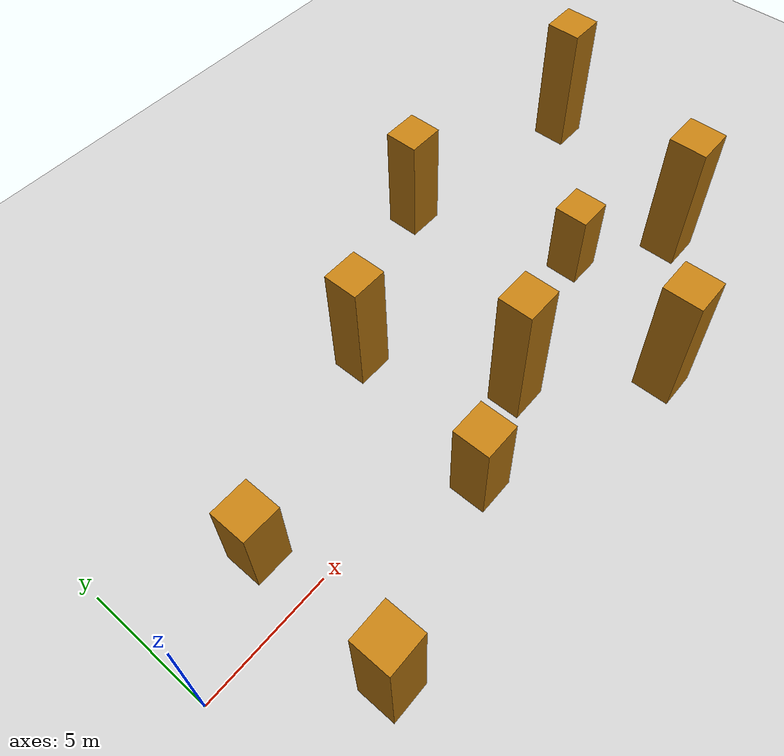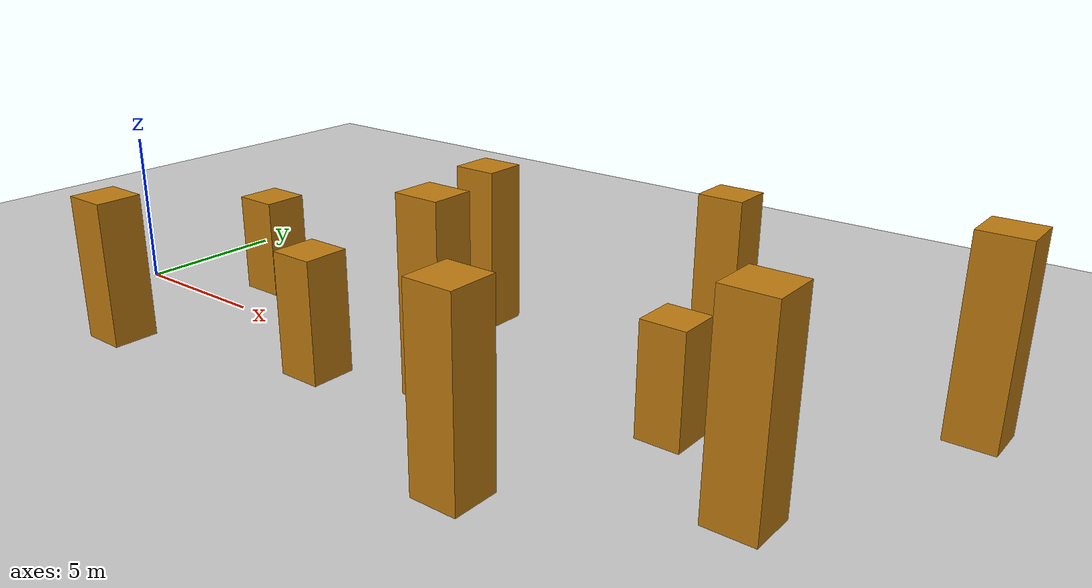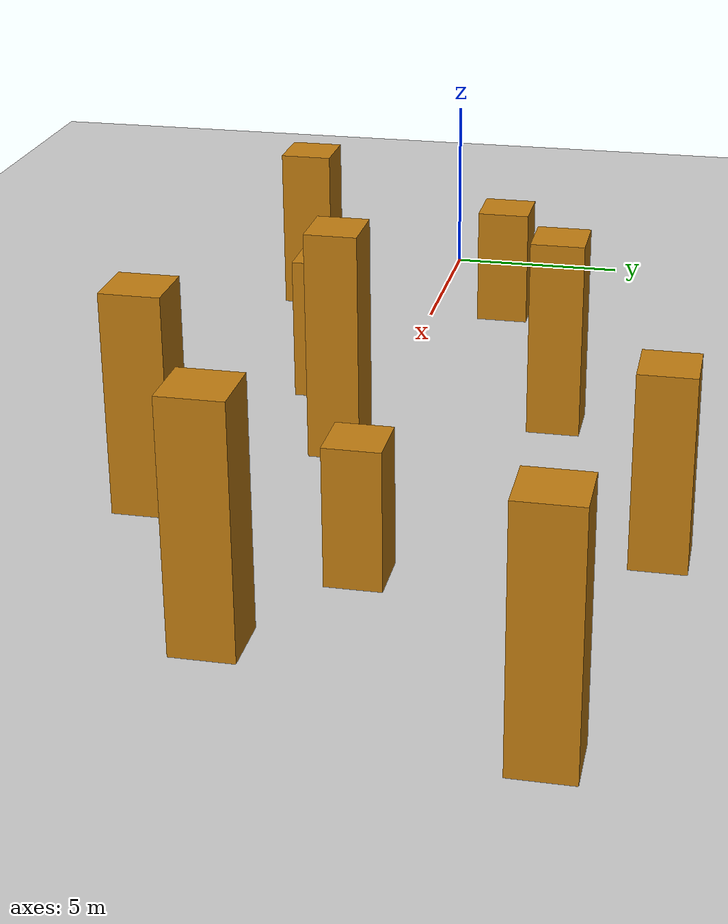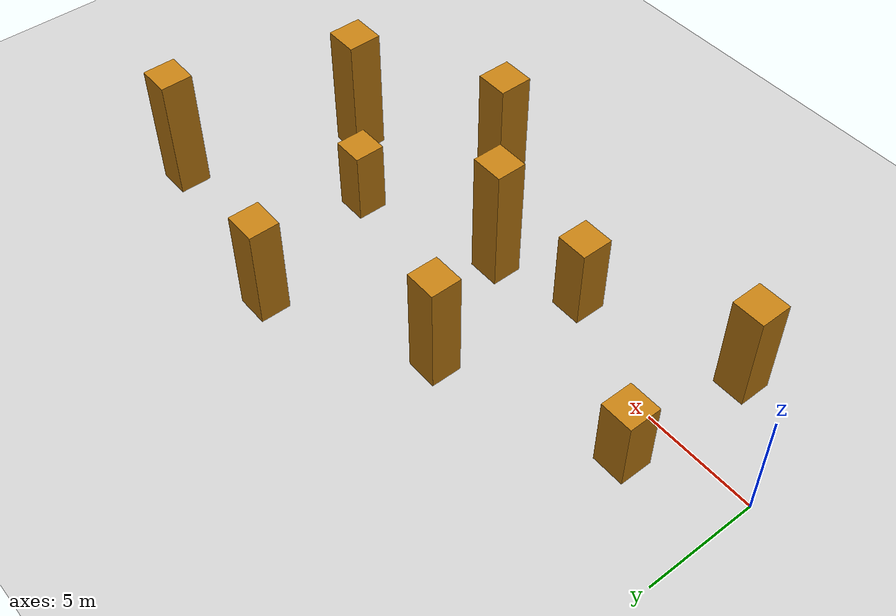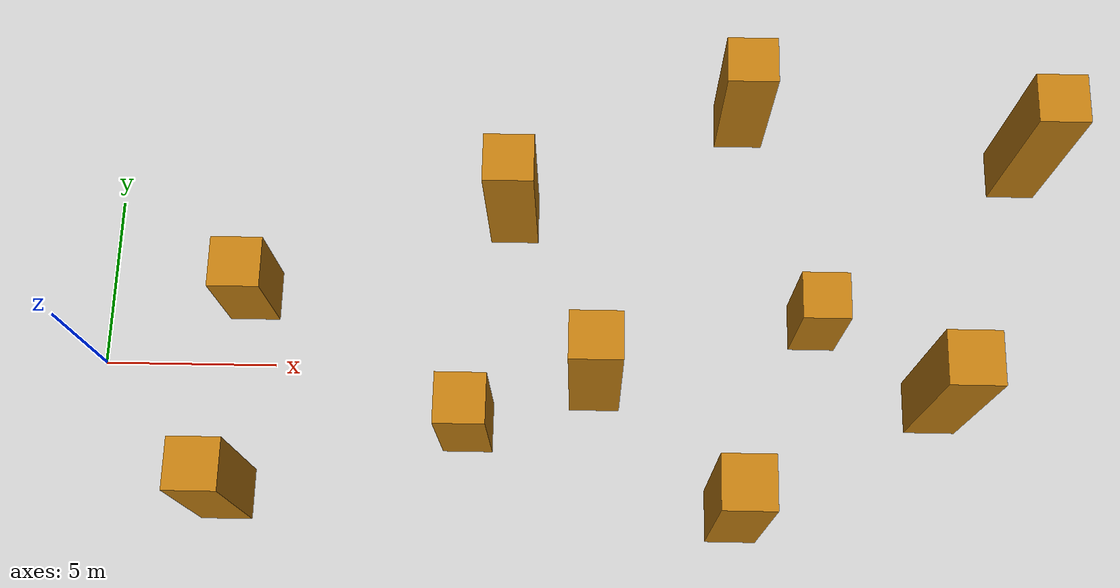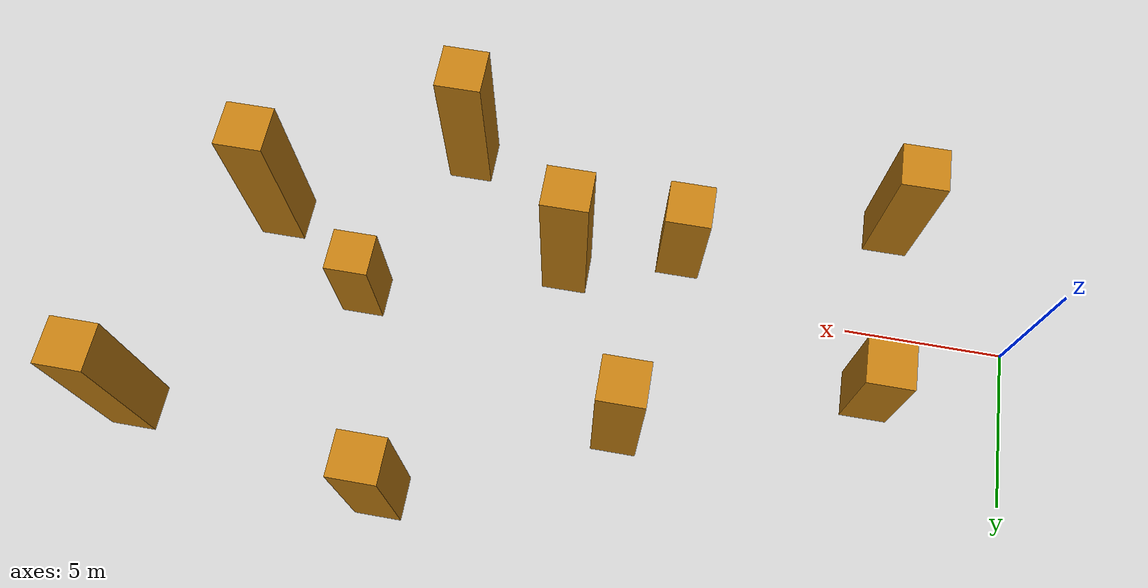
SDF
<sdf version="1.7">
 <world name="default">
  <light name="sun" type="directional">
   <pose>0 0 10 0 -0 0</pose>
   <diffuse>0.8 0.8 0.8 1</diffuse>
   <specular>0.2 0.2 0.2 1</specular>
   <attenuation>
    <range>1000</range>
    <constant>0.9</constant>
    <linear>0.01</linear>
    <quadratic>0.001</quadratic>
   </attenuation>
   <direction>-0.5 0.1 -0.9</direction>
   <spot><inner_angle>0</inner_angle><outer_angle>0</outer_angle><falloff>0</falloff></spot>
  </light>
  <model name="ground_plane">
   <static>1</static>
   <link name="link">
    <collision name="collision">
     <geometry><plane><normal>0 0 1</normal><size>100 100</size></plane></geometry>
     <surface>
      <contact><collide_bitmask>65535</collide_bitmask></contact>
      <friction><ode><mu>100</mu><mu2>50</mu2></ode></friction>
     </surface>
    </collision>
    <visual name="visual">
     <cast_shadows>0</cast_shadows>
     <geometry><plane><normal>0 0 1</normal><size>100 100</size></plane></geometry>
     <material>
      <script><uri>file://media/materials/scripts/gazebo.material</uri><name>Gazebo/Grey</name></script>
     </material>
    </visual>
   </link>
  </model>
  <gravity>0 0 -9.8</gravity>
  <magnetic_field>6e-06 2.3e-05 -4.2e-05</magnetic_field>
  <atmosphere type="adiabatic"/>
  <physics type="ode">
   <max_step_size>0.001</max_step_size>
   <real_time_factor>1</real_time_factor>
   <real_time_update_rate>1000</real_time_update_rate>
  </physics>
  <scene><ambient>0.4 0.4 0.4 1</ambient><background>0.7 0.7 0.7 1</background><shadows>1</shadows></scene>
  <spherical_coordinates>
   <surface_model>EARTH_WGS84</surface_model>
   <latitude_deg>0</latitude_deg>
   <longitude_deg>0</longitude_deg>
   <elevation>0</elevation>
   <heading_deg>0</heading_deg>
  </spherical_coordinates>
  <plugin name="gazebo_octomap" filename="libBuildOctomapPlugin.so"/>
  <model name="model0">
   <link name="link">
    <inertial>
     <mass>1</mass>
     <inertia>
      <ixx>0.166667</ixx>
      <ixy>0</ixy>
      <ixz>0</ixz>
      <iyy>0.166667</iyy>
      <iyz>0</iyz>
      <izz>0.166667</izz>
     </inertia>
    </inertial>
    <visual name="visual">
     <geometry><box><size>1.4130845123204308 1.4042926736813839 5.710536081386133</size></box></geometry>
     <material>
      <script><name>Gazebo/Grey</name><uri>file://media/materials/scripts/gazebo.material</uri></script>
      <shader type="pixel"><normal_map>__default__</normal_map></shader>
      <ambient>0.757 0.49 0.067 1</ambient>
      <diffuse>0.7 0.7 0.7 1</diffuse>
      <specular>0.01 0.01 0.01 1</specular>
      <emissive>0 0 0 1</emissive>
     </material>
    </visual>
    <collision name="collision">
     <geometry><box><size>1.4130845123204308 1.4042926736813839 5.710536081386133</size></box></geometry>
     <surface>
      <friction>
       <ode><mu>1</mu><mu2>1</mu2><fdir1>0 0 0</fdir1><slip1>0</slip1><slip2>0</slip2></ode>
       <torsional>
        <coefficient>1</coefficient>
        <patch_radius>0</patch_radius>
        <surface_radius>0</surface_radius>
        <use_patch_radius>1</use_patch_radius>
        <ode><slip>0</slip></ode>
       </torsional>
      </friction>
      <bounce><restitution_coefficient>0</restitution_coefficient><threshold>1e+06</threshold></bounce>
      <contact>
       <collide_without_contact>0</collide_without_contact>
       <collide_without_contact_bitmask>1</collide_without_contact_bitmask>
       <collide_bitmask>1</collide_bitmask>
       <ode>
        <soft_cfm>0</soft_cfm>
        <soft_erp>0.2</soft_erp>
        <kp>1e+13</kp>
        <kd>1</kd>
        <max_vel>0.01</max_vel>
        <min_depth>0</min_depth>
       </ode>
       <bullet>
        <split_impulse>1</split_impulse>
        <split_impulse_penetration_threshold>-0.01</split_impulse_penetration_threshold>
        <soft_cfm>0</soft_cfm>
        <soft_erp>0.2</soft_erp>
        <kp>1e+13</kp>
        <kd>1</kd>
       </bullet>
      </contact>
     </surface>
    </collision>
   </link>
   <static>0</static>
   <pose>26.993188471198067 6.420575246922764 2.8552680406930664 0.0 0.0 0.0</pose>
  </model>
  <model name="model1">
   <link name="link">
    <inertial>
     <mass>1</mass>
     <inertia>
      <ixx>0.166667</ixx>
      <ixy>0</ixy>
      <ixz>0</ixz>
      <iyy>0.166667</iyy>
      <iyz>0</iyz>
      <izz>0.166667</izz>
     </inertia>
    </inertial>
    <visual name="visual">
     <geometry><box><size>1.4405037815426829 1.4671449215757584 5.537830678279796</size></box></geometry>
     <material>
      <script><name>Gazebo/Grey</name><uri>file://media/materials/scripts/gazebo.material</uri></script>
      <shader type="pixel"><normal_map>__default__</normal_map></shader>
      <ambient>0.757 0.49 0.067 1</ambient>
      <diffuse>0.7 0.7 0.7 1</diffuse>
      <specular>0.01 0.01 0.01 1</specular>
      <emissive>0 0 0 1</emissive>
     </material>
    </visual>
    <collision name="collision">
     <geometry><box><size>1.4405037815426829 1.4671449215757584 5.537830678279796</size></box></geometry>
     <surface>
      <friction>
       <ode><mu>1</mu><mu2>1</mu2><fdir1>0 0 0</fdir1><slip1>0</slip1><slip2>0</slip2></ode>
       <torsional>
        <coefficient>1</coefficient>
        <patch_radius>0</patch_radius>
        <surface_radius>0</surface_radius>
        <use_patch_radius>1</use_patch_radius>
        <ode><slip>0</slip></ode>
       </torsional>
      </friction>
      <bounce><restitution_coefficient>0</restitution_coefficient><threshold>1e+06</threshold></bounce>
      <contact>
       <collide_without_contact>0</collide_without_contact>
       <collide_without_contact_bitmask>1</collide_without_contact_bitmask>
       <collide_bitmask>1</collide_bitmask>
       <ode>
        <soft_cfm>0</soft_cfm>
        <soft_erp>0.2</soft_erp>
        <kp>1e+13</kp>
        <kd>1</kd>
        <max_vel>0.01</max_vel>
        <min_depth>0</min_depth>
       </ode>
       <bullet>
        <split_impulse>1</split_impulse>
        <split_impulse_penetration_threshold>-0.01</split_impulse_penetration_threshold>
        <soft_cfm>0</soft_cfm>
        <soft_erp>0.2</soft_erp>
        <kp>1e+13</kp>
        <kd>1</kd>
       </bullet>
      </contact>
     </surface>
    </collision>
   </link>
   <static>0</static>
   <pose>18.32082509748465 -4.2199518191132706 2.768915339139898 0.0 0.0 0.0</pose>
  </model>
  <model name="model2">
   <link name="link">
    <inertial>
     <mass>1</mass>
     <inertia>
      <ixx>0.166667</ixx>
      <ixy>0</ixy>
      <ixz>0</ixz>
      <iyy>0.166667</iyy>
      <iyz>0</iyz>
      <izz>0.166667</izz>
     </inertia>
    </inertial>
    <visual name="visual">
     <geometry><box><size>1.408769366748598 1.3589271510159855 5.117746169842762</size></box></geometry>
     <material>
      <script><name>Gazebo/Grey</name><uri>file://media/materials/scripts/gazebo.material</uri></script>
      <shader type="pixel"><normal_map>__default__</normal_map></shader>
      <ambient>0.757 0.49 0.067 1</ambient>
      <diffuse>0.7 0.7 0.7 1</diffuse>
      <specular>0.01 0.01 0.01 1</specular>
      <emissive>0 0 0 1</emissive>
     </material>
    </visual>
    <collision name="collision">
     <geometry><box><size>1.408769366748598 1.3589271510159855 5.117746169842762</size></box></geometry>
     <surface>
      <friction>
       <ode><mu>1</mu><mu2>1</mu2><fdir1>0 0 0</fdir1><slip1>0</slip1><slip2>0</slip2></ode>
       <torsional>
        <coefficient>1</coefficient>
        <patch_radius>0</patch_radius>
        <surface_radius>0</surface_radius>
        <use_patch_radius>1</use_patch_radius>
        <ode><slip>0</slip></ode>
       </torsional>
      </friction>
      <bounce><restitution_coefficient>0</restitution_coefficient><threshold>1e+06</threshold></bounce>
      <contact>
       <collide_without_contact>0</collide_without_contact>
       <collide_without_contact_bitmask>1</collide_without_contact_bitmask>
       <collide_bitmask>1</collide_bitmask>
       <ode>
        <soft_cfm>0</soft_cfm>
        <soft_erp>0.2</soft_erp>
        <kp>1e+13</kp>
        <kd>1</kd>
        <max_vel>0.01</max_vel>
        <min_depth>0</min_depth>
       </ode>
       <bullet>
        <split_impulse>1</split_impulse>
        <split_impulse_penetration_threshold>-0.01</split_impulse_penetration_threshold>
        <soft_cfm>0</soft_cfm>
        <soft_erp>0.2</soft_erp>
        <kp>1e+13</kp>
        <kd>1</kd>
       </bullet>
      </contact>
     </surface>
    </collision>
   </link>
   <static>0</static>
   <pose>11.922980490734965 4.651471050047353 2.558873084921381 0.0 0.0 0.0</pose>
  </model>
  <model name="model3">
   <link name="link">
    <inertial>
     <mass>1</mass>
     <inertia>
      <ixx>0.166667</ixx>
      <ixy>0</ixy>
      <ixz>0</ixz>
      <iyy>0.166667</iyy>
      <iyz>0</iyz>
      <izz>0.166667</izz>
     </inertia>
    </inertial>
    <visual name="visual">
     <geometry><box><size>1.3492793201982998 1.3313512364612945 3.354428915677192</size></box></geometry>
     <material>
      <script><name>Gazebo/Grey</name><uri>file://media/materials/scripts/gazebo.material</uri></script>
      <shader type="pixel"><normal_map>__default__</normal_map></shader>
      <ambient>0.757 0.49 0.067 1</ambient>
      <diffuse>0.7 0.7 0.7 1</diffuse>
      <specular>0.01 0.01 0.01 1</specular>
      <emissive>0 0 0 1</emissive>
     </material>
    </visual>
    <collision name="collision">
     <geometry><box><size>1.3492793201982998 1.3313512364612945 3.354428915677192</size></box></geometry>
     <surface>
      <friction>
       <ode><mu>1</mu><mu2>1</mu2><fdir1>0 0 0</fdir1><slip1>0</slip1><slip2>0</slip2></ode>
       <torsional>
        <coefficient>1</coefficient>
        <patch_radius>0</patch_radius>
        <surface_radius>0</surface_radius>
        <use_patch_radius>1</use_patch_radius>
        <ode><slip>0</slip></ode>
       </torsional>
      </friction>
      <bounce><restitution_coefficient>0</restitution_coefficient><threshold>1e+06</threshold></bounce>
      <contact>
       <collide_without_contact>0</collide_without_contact>
       <collide_without_contact_bitmask>1</collide_without_contact_bitmask>
       <collide_bitmask>1</collide_bitmask>
       <ode>
        <soft_cfm>0</soft_cfm>
        <soft_erp>0.2</soft_erp>
        <kp>1e+13</kp>
        <kd>1</kd>
        <max_vel>0.01</max_vel>
        <min_depth>0</min_depth>
       </ode>
       <bullet>
        <split_impulse>1</split_impulse>
        <split_impulse_penetration_threshold>-0.01</split_impulse_penetration_threshold>
        <soft_cfm>0</soft_cfm>
        <soft_erp>0.2</soft_erp>
        <kp>1e+13</kp>
        <kd>1</kd>
       </bullet>
      </contact>
     </surface>
    </collision>
   </link>
   <static>0</static>
   <pose>20.783579469358262 1.434708832013847 1.677214457838596 0.0 0.0 0.0</pose>
  </model>
  <model name="model4">
   <link name="link">
    <inertial>
     <mass>1</mass>
     <inertia>
      <ixx>0.166667</ixx>
      <ixy>0</ixy>
      <ixz>0</ixz>
      <iyy>0.166667</iyy>
      <iyz>0</iyz>
      <izz>0.166667</izz>
     </inertia>
    </inertial>
    <visual name="visual">
     <geometry><box><size>1.449918919632659 1.4303566558531946 4.580486632353377</size></box></geometry>
     <material>
      <script><name>Gazebo/Grey</name><uri>file://media/materials/scripts/gazebo.material</uri></script>
      <shader type="pixel"><normal_map>__default__</normal_map></shader>
      <ambient>0.757 0.49 0.067 1</ambient>
      <diffuse>0.7 0.7 0.7 1</diffuse>
      <specular>0.01 0.01 0.01 1</specular>
      <emissive>0 0 0 1</emissive>
     </material>
    </visual>
    <collision name="collision">
     <geometry><box><size>1.449918919632659 1.4303566558531946 4.580486632353377</size></box></geometry>
     <surface>
      <friction>
       <ode><mu>1</mu><mu2>1</mu2><fdir1>0 0 0</fdir1><slip1>0</slip1><slip2>0</slip2></ode>
       <torsional>
        <coefficient>1</coefficient>
        <patch_radius>0</patch_radius>
        <surface_radius>0</surface_radius>
        <use_patch_radius>1</use_patch_radius>
        <ode><slip>0</slip></ode>
       </torsional>
      </friction>
      <bounce><restitution_coefficient>0</restitution_coefficient><threshold>1e+06</threshold></bounce>
      <contact>
       <collide_without_contact>0</collide_without_contact>
       <collide_without_contact_bitmask>1</collide_without_contact_bitmask>
       <collide_bitmask>1</collide_bitmask>
       <ode>
        <soft_cfm>0</soft_cfm>
        <soft_erp>0.2</soft_erp>
        <kp>1e+13</kp>
        <kd>1</kd>
        <max_vel>0.01</max_vel>
        <min_depth>0</min_depth>
       </ode>
       <bullet>
        <split_impulse>1</split_impulse>
        <split_impulse_penetration_threshold>-0.01</split_impulse_penetration_threshold>
        <soft_cfm>0</soft_cfm>
        <soft_erp>0.2</soft_erp>
        <kp>1e+13</kp>
        <kd>1</kd>
       </bullet>
      </contact>
     </surface>
    </collision>
   </link>
   <static>0</static>
   <pose>3.9338934464721786 -3.828151937244034 2.2902433161766886 0.0 0.0 0.0</pose>
  </model>
  <model name="model5">
   <link name="link">
    <inertial>
     <mass>1</mass>
     <inertia>
      <ixx>0.166667</ixx>
      <ixy>0</ixy>
      <ixz>0</ixz>
      <iyy>0.166667</iyy>
      <iyz>0</iyz>
      <izz>0.166667</izz>
     </inertia>
    </inertial>
    <visual name="visual">
     <geometry><box><size>1.44029289350711 1.3379754987268202 4.729131278974041</size></box></geometry>
     <material>
      <script><name>Gazebo/Grey</name><uri>file://media/materials/scripts/gazebo.material</uri></script>
      <shader type="pixel"><normal_map>__default__</normal_map></shader>
      <ambient>0.757 0.49 0.067 1</ambient>
      <diffuse>0.7 0.7 0.7 1</diffuse>
      <specular>0.01 0.01 0.01 1</specular>
      <emissive>0 0 0 1</emissive>
     </material>
    </visual>
    <collision name="collision">
     <geometry><box><size>1.44029289350711 1.3379754987268202 4.729131278974041</size></box></geometry>
     <surface>
      <friction>
       <ode><mu>1</mu><mu2>1</mu2><fdir1>0 0 0</fdir1><slip1>0</slip1><slip2>0</slip2></ode>
       <torsional>
        <coefficient>1</coefficient>
        <patch_radius>0</patch_radius>
        <surface_radius>0</surface_radius>
        <use_patch_radius>1</use_patch_radius>
        <ode><slip>0</slip></ode>
       </torsional>
      </friction>
      <bounce><restitution_coefficient>0</restitution_coefficient><threshold>1e+06</threshold></bounce>
      <contact>
       <collide_without_contact>0</collide_without_contact>
       <collide_without_contact_bitmask>1</collide_without_contact_bitmask>
       <collide_bitmask>1</collide_bitmask>
       <ode>
        <soft_cfm>0</soft_cfm>
        <soft_erp>0.2</soft_erp>
        <kp>1e+13</kp>
        <kd>1</kd>
        <max_vel>0.01</max_vel>
        <min_depth>0</min_depth>
       </ode>
       <bullet>
        <split_impulse>1</split_impulse>
        <split_impulse_penetration_threshold>-0.01</split_impulse_penetration_threshold>
        <soft_cfm>0</soft_cfm>
        <soft_erp>0.2</soft_erp>
        <kp>1e+13</kp>
        <kd>1</kd>
       </bullet>
      </contact>
     </surface>
    </collision>
   </link>
   <static>0</static>
   <pose>18.690963467135703 7.891336240259034 2.3645656394870205 0.0 0.0 0.0</pose>
  </model>
  <model name="model6">
   <link name="link">
    <inertial>
     <mass>1</mass>
     <inertia>
      <ixx>0.166667</ixx>
      <ixy>0</ixy>
      <ixz>0</ixz>
      <iyy>0.166667</iyy>
      <iyz>0</iyz>
      <izz>0.166667</izz>
     </inertia>
    </inertial>
    <visual name="visual">
     <geometry><box><size>1.4407644948345633 1.3152687688686155 5.864635276038921</size></box></geometry>
     <material>
      <script><name>Gazebo/Grey</name><uri>file://media/materials/scripts/gazebo.material</uri></script>
      <shader type="pixel"><normal_map>__default__</normal_map></shader>
      <ambient>0.757 0.49 0.067 1</ambient>
      <diffuse>0.7 0.7 0.7 1</diffuse>
      <specular>0.01 0.01 0.01 1</specular>
      <emissive>0 0 0 1</emissive>
     </material>
    </visual>
    <collision name="collision">
     <geometry><box><size>1.4407644948345633 1.3152687688686155 5.864635276038921</size></box></geometry>
     <surface>
      <friction>
       <ode><mu>1</mu><mu2>1</mu2><fdir1>0 0 0</fdir1><slip1>0</slip1><slip2>0</slip2></ode>
       <torsional>
        <coefficient>1</coefficient>
        <patch_radius>0</patch_radius>
        <surface_radius>0</surface_radius>
        <use_patch_radius>1</use_patch_radius>
        <ode><slip>0</slip></ode>
       </torsional>
      </friction>
      <bounce><restitution_coefficient>0</restitution_coefficient><threshold>1e+06</threshold></bounce>
      <contact>
       <collide_without_contact>0</collide_without_contact>
       <collide_without_contact_bitmask>1</collide_without_contact_bitmask>
       <collide_bitmask>1</collide_bitmask>
       <ode>
        <soft_cfm>0</soft_cfm>
        <soft_erp>0.2</soft_erp>
        <kp>1e+13</kp>
        <kd>1</kd>
        <max_vel>0.01</max_vel>
        <min_depth>0</min_depth>
       </ode>
       <bullet>
        <split_impulse>1</split_impulse>
        <split_impulse_penetration_threshold>-0.01</split_impulse_penetration_threshold>
        <soft_cfm>0</soft_cfm>
        <soft_erp>0.2</soft_erp>
        <kp>1e+13</kp>
        <kd>1</kd>
       </bullet>
      </contact>
     </surface>
    </collision>
   </link>
   <static>0</static>
   <pose>14.392596646267283 -0.5284935843689001 2.9323176380194607 0.0 0.0 0.0</pose>
  </model>
  <model name="model7">
   <link name="link">
    <inertial>
     <mass>1</mass>
     <inertia>
      <ixx>0.166667</ixx>
      <ixy>0</ixy>
      <ixz>0</ixz>
      <iyy>0.166667</iyy>
      <iyz>0</iyz>
      <izz>0.166667</izz>
     </inertia>
    </inertial>
    <visual name="visual">
     <geometry><box><size>1.4203481890206524 1.4220161095375696 3.777783486194081</size></box></geometry>
     <material>
      <script><name>Gazebo/Grey</name><uri>file://media/materials/scripts/gazebo.material</uri></script>
      <shader type="pixel"><normal_map>__default__</normal_map></shader>
      <ambient>0.757 0.49 0.067 1</ambient>
      <diffuse>0.7 0.7 0.7 1</diffuse>
      <specular>0.01 0.01 0.01 1</specular>
      <emissive>0 0 0 1</emissive>
     </material>
    </visual>
    <collision name="collision">
     <geometry><box><size>1.4203481890206524 1.4220161095375696 3.777783486194081</size></box></geometry>
     <surface>
      <friction>
       <ode><mu>1</mu><mu2>1</mu2><fdir1>0 0 0</fdir1><slip1>0</slip1><slip2>0</slip2></ode>
       <torsional>
        <coefficient>1</coefficient>
        <patch_radius>0</patch_radius>
        <surface_radius>0</surface_radius>
        <use_patch_radius>1</use_patch_radius>
        <ode><slip>0</slip></ode>
       </torsional>
      </friction>
      <bounce><restitution_coefficient>0</restitution_coefficient><threshold>1e+06</threshold></bounce>
      <contact>
       <collide_without_contact>0</collide_without_contact>
       <collide_without_contact_bitmask>1</collide_without_contact_bitmask>
       <collide_bitmask>1</collide_bitmask>
       <ode>
        <soft_cfm>0</soft_cfm>
        <soft_erp>0.2</soft_erp>
        <kp>1e+13</kp>
        <kd>1</kd>
        <max_vel>0.01</max_vel>
        <min_depth>0</min_depth>
       </ode>
       <bullet>
        <split_impulse>1</split_impulse>
        <split_impulse_penetration_threshold>-0.01</split_impulse_penetration_threshold>
        <soft_cfm>0</soft_cfm>
        <soft_erp>0.2</soft_erp>
        <kp>1e+13</kp>
        <kd>1</kd>
       </bullet>
      </contact>
     </surface>
    </collision>
   </link>
   <static>0</static>
   <pose>10.75482681209984 -1.762041722334664 1.8888917430970404 0.0 0.0 0.0</pose>
  </model>
  <model name="model8">
   <link name="link">
    <inertial>
     <mass>1</mass>
     <inertia>
      <ixx>0.166667</ixx>
      <ixy>0</ixy>
      <ixz>0</ixz>
      <iyy>0.166667</iyy>
      <iyz>0</iyz>
      <izz>0.166667</izz>
     </inertia>
    </inertial>
    <visual name="visual">
     <geometry><box><size>1.4725128650448356 1.4708311479730547 5.83429072722164</size></box></geometry>
     <material>
      <script><name>Gazebo/Grey</name><uri>file://media/materials/scripts/gazebo.material</uri></script>
      <shader type="pixel"><normal_map>__default__</normal_map></shader>
      <ambient>0.757 0.49 0.067 1</ambient>
      <diffuse>0.7 0.7 0.7 1</diffuse>
      <specular>0.01 0.01 0.01 1</specular>
      <emissive>0 0 0 1</emissive>
     </material>
    </visual>
    <collision name="collision">
     <geometry><box><size>1.4725128650448356 1.4708311479730547 5.83429072722164</size></box></geometry>
     <surface>
      <friction>
       <ode><mu>1</mu><mu2>1</mu2><fdir1>0 0 0</fdir1><slip1>0</slip1><slip2>0</slip2></ode>
       <torsional>
        <coefficient>1</coefficient>
        <patch_radius>0</patch_radius>
        <surface_radius>0</surface_radius>
        <use_patch_radius>1</use_patch_radius>
        <ode><slip>0</slip></ode>
       </torsional>
      </friction>
      <bounce><restitution_coefficient>0</restitution_coefficient><threshold>1e+06</threshold></bounce>
      <contact>
       <collide_without_contact>0</collide_without_contact>
       <collide_without_contact_bitmask>1</collide_without_contact_bitmask>
       <collide_bitmask>1</collide_bitmask>
       <ode>
        <soft_cfm>0</soft_cfm>
        <soft_erp>0.2</soft_erp>
        <kp>1e+13</kp>
        <kd>1</kd>
        <max_vel>0.01</max_vel>
        <min_depth>0</min_depth>
       </ode>
       <bullet>
        <split_impulse>1</split_impulse>
        <split_impulse_penetration_threshold>-0.01</split_impulse_penetration_threshold>
        <soft_cfm>0</soft_cfm>
        <soft_erp>0.2</soft_erp>
        <kp>1e+13</kp>
        <kd>1</kd>
       </bullet>
      </contact>
     </surface>
    </collision>
   </link>
   <static>0</static>
   <pose>24.15665190979372 -0.940136355428378 2.91714536361082 0.0 0.0 0.0</pose>
  </model>
  <model name="model9">
   <link name="link">
    <inertial>
     <mass>1</mass>
     <inertia>
      <ixx>0.166667</ixx>
      <ixy>0</ixy>
      <ixz>0</ixz>
      <iyy>0.166667</iyy>
      <iyz>0</iyz>
      <izz>0.166667</izz>
     </inertia>
    </inertial>
    <visual name="visual">
     <geometry><box><size>1.4629703943002585 1.4499488731422019 3.2757573369521187</size></box></geometry>
     <material>
      <script><name>Gazebo/Grey</name><uri>file://media/materials/scripts/gazebo.material</uri></script>
      <shader type="pixel"><normal_map>__default__</normal_map></shader>
      <ambient>0.757 0.49 0.067 1</ambient>
      <diffuse>0.7 0.7 0.7 1</diffuse>
      <specular>0.01 0.01 0.01 1</specular>
      <emissive>0 0 0 1</emissive>
     </material>
    </visual>
    <collision name="collision">
     <geometry><box><size>1.4629703943002585 1.4499488731422019 3.2757573369521187</size></box></geometry>
     <surface>
      <friction>
       <ode><mu>1</mu><mu2>1</mu2><fdir1>0 0 0</fdir1><slip1>0</slip1><slip2>0</slip2></ode>
       <torsional>
        <coefficient>1</coefficient>
        <patch_radius>0</patch_radius>
        <surface_radius>0</surface_radius>
        <use_patch_radius>1</use_patch_radius>
        <ode><slip>0</slip></ode>
       </torsional>
      </friction>
      <bounce><restitution_coefficient>0</restitution_coefficient><threshold>1e+06</threshold></bounce>
      <contact>
       <collide_without_contact>0</collide_without_contact>
       <collide_without_contact_bitmask>1</collide_without_contact_bitmask>
       <collide_bitmask>1</collide_bitmask>
       <ode>
        <soft_cfm>0</soft_cfm>
        <soft_erp>0.2</soft_erp>
        <kp>1e+13</kp>
        <kd>1</kd>
        <max_vel>0.01</max_vel>
        <min_depth>0</min_depth>
       </ode>
       <bullet>
        <split_impulse>1</split_impulse>
        <split_impulse_penetration_threshold>-0.01</split_impulse_penetration_threshold>
        <soft_cfm>0</soft_cfm>
        <soft_erp>0.2</soft_erp>
        <kp>1e+13</kp>
        <kd>1</kd>
       </bullet>
      </contact>
     </surface>
    </collision>
   </link>
   <static>0</static>
   <pose>4.270413786629895 2.1373289880797675 1.6378786684760593 0.0 0.0 0.0</pose>
  </model>
 </world>
</sdf>
